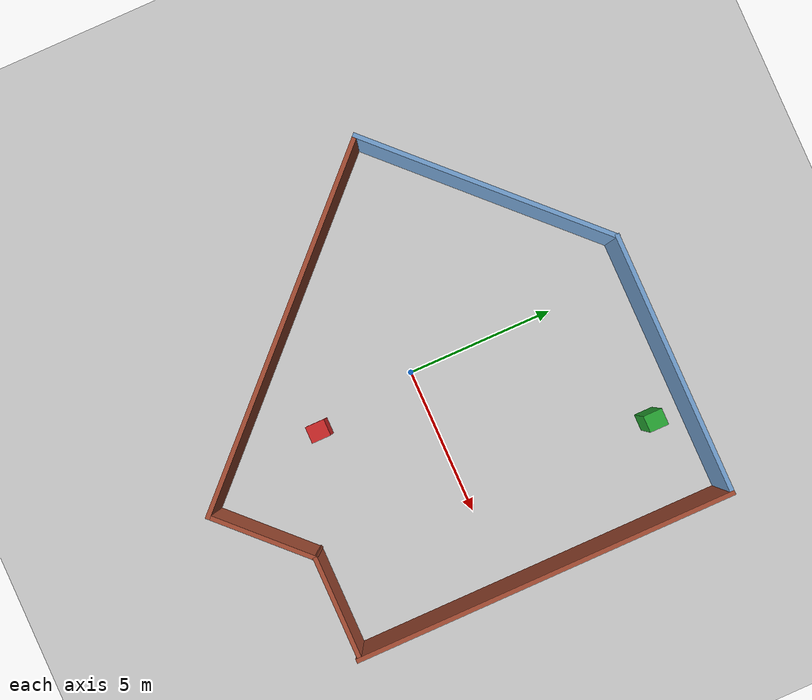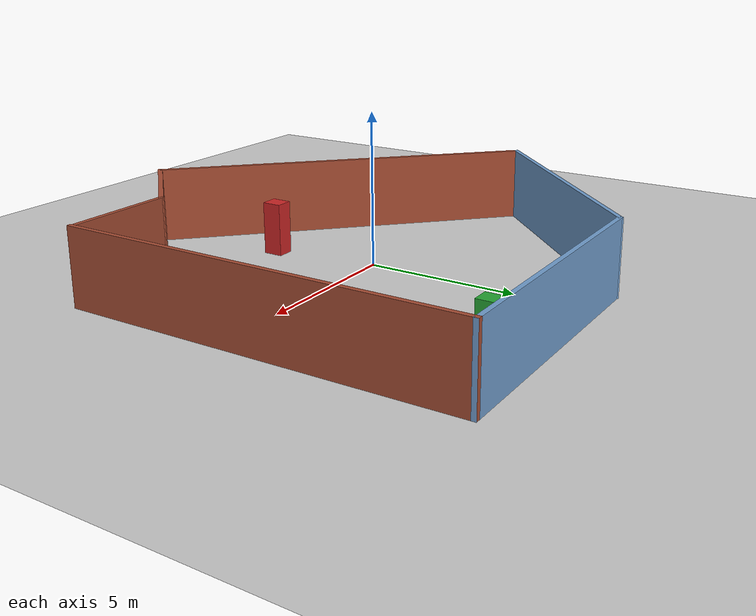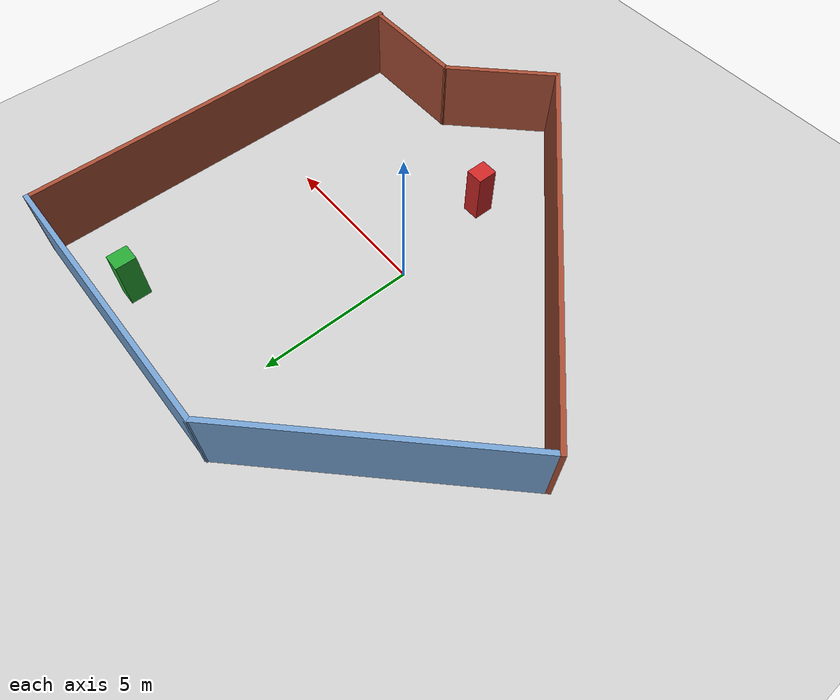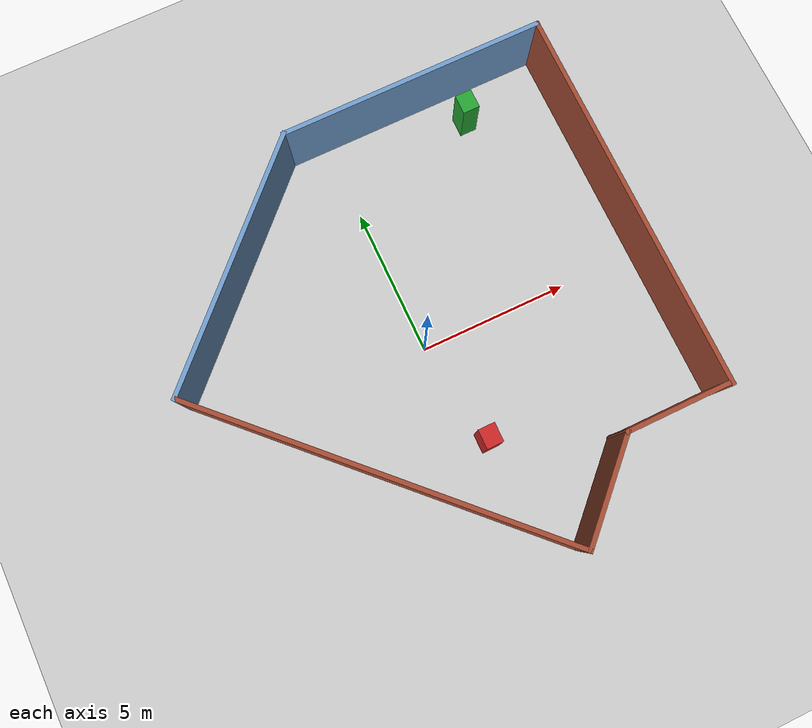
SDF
<sdf version="1.7">
 <world name="default">
  <light name="sun" type="directional">
   <pose>0 0 10 0 -0 0</pose>
   <diffuse>0.8 0.8 0.8 1</diffuse>
   <specular>0.2 0.2 0.2 1</specular>
   <attenuation>
    <range>1000</range>
    <constant>0.9</constant>
    <linear>0.01</linear>
    <quadratic>0.001</quadratic>
   </attenuation>
   <direction>-0.5 0.1 -0.9</direction>
   <spot><inner_angle>0</inner_angle><outer_angle>0</outer_angle><falloff>0</falloff></spot>
  </light>
  <model name="ground_plane">
   <static>1</static>
   <link name="link">
    <collision name="collision">
     <geometry><plane><normal>0 0 1</normal><size>100 100</size></plane></geometry>
     <surface><friction><ode><mu>100</mu><mu2>50</mu2></ode></friction></surface>
    </collision>
    <visual name="visual">
     <cast_shadows>0</cast_shadows>
     <geometry><plane><normal>0 0 1</normal><size>100 100</size></plane></geometry>
     <material>
      <script><uri>file://media/materials/scripts/gazebo.material</uri><name>Gazebo/Grey</name></script>
     </material>
    </visual>
   </link>
  </model>
  <gravity>0 0 -9.8</gravity>
  <magnetic_field>6e-06 2.3e-05 -4.2e-05</magnetic_field>
  <atmosphere type="adiabatic"/>
  <physics type="ode">
   <max_step_size>0.001</max_step_size>
   <real_time_factor>1</real_time_factor>
   <real_time_update_rate>1000</real_time_update_rate>
  </physics>
  <scene><ambient>0.4 0.4 0.4 1</ambient><background>0.7 0.7 0.7 1</background><shadows>1</shadows></scene>
  <spherical_coordinates>
   <surface_model>EARTH_WGS84</surface_model>
   <latitude_deg>0</latitude_deg>
   <longitude_deg>0</longitude_deg>
   <elevation>0</elevation>
   <heading_deg>0</heading_deg>
  </spherical_coordinates>
  <model name="atrium.world">
   <pose>0.001025 0.007166 0 0 -0 0</pose>
   <link name="Wall_14">
    <collision name="Wall_14_Collision">
     <geometry><box><size>13 0.15 2.5</size></box></geometry>
     <pose>0 0 1.25 0 -0 0</pose>
    </collision>
    <visual name="Wall_14_Visual">
     <pose>0 0 1.25 0 -0 0</pose>
     <geometry><box><size>13 0.15 2.5</size></box></geometry>
     <material>
      <script><uri>file://media/materials/scripts/gazebo.material</uri><name>Gazebo/Bricks</name></script>
      <ambient>1 1 1 1</ambient>
     </material>
     <meta><layer>0</layer></meta>
    </visual>
    <pose>7.56948 1.24711 0 0 -0 1.5708</pose>
   </link>
   <link name="Wall_15">
    <collision name="Wall_15_Collision">
     <geometry><box><size>9 0.15 2.5</size></box></geometry>
     <pose>0 0 1.25 0 -0 0</pose>
    </collision>
    <visual name="Wall_15_Visual">
     <pose>0 0 1.25 0 -0 0</pose>
     <geometry><box><size>9 0.15 2.5</size></box></geometry>
     <material>
      <script><uri>file://media/materials/scripts/gazebo.material</uri><name>Gazebo/Grey</name></script>
      <ambient>0.447059 0.623529 0.811765 1</ambient>
     </material>
     <meta><layer>0</layer></meta>
    </visual>
    <pose>3.14448 7.67211 0 0 -0 3.14159</pose>
   </link>
   <link name="Wall_16">
    <collision name="Wall_16_Collision">
     <geometry><box><size>9 0.15 2.5</size></box></geometry>
     <pose>0 0 1.25 0 -0 0</pose>
    </collision>
    <visual name="Wall_16_Visual">
     <pose>0 0 1.25 0 -0 0</pose>
     <geometry><box><size>9 0.15 2.5</size></box></geometry>
     <material>
      <script><uri>file://media/materials/scripts/gazebo.material</uri><name>Gazebo/Grey</name></script>
      <ambient>0.447059 0.623529 0.811765 1</ambient>
     </material>
     <meta><layer>0</layer></meta>
    </visual>
    <pose>-4.40947 4.54316 0 0 -0 -2.35619</pose>
   </link>
   <link name="Wall_17">
    <collision name="Wall_17_Collision">
     <geometry><box><size>13 0.15 2.5</size></box></geometry>
     <pose>0 0 1.25 0 -0 0</pose>
    </collision>
    <visual name="Wall_17_Visual">
     <pose>0 0 1.25 0 -0 0</pose>
     <geometry><box><size>13 0.15 2.5</size></box></geometry>
     <material>
      <script><uri>file://media/materials/scripts/gazebo.material</uri><name>Gazebo/Bricks</name></script>
      <ambient>1 1 1 1</ambient>
     </material>
     <meta><layer>0</layer></meta>
    </visual>
    <pose>-2.99525 -3.12895 0 0 -0 -0.785398</pose>
   </link>
   <link name="Wall_18">
    <collision name="Wall_18_Collision">
     <geometry><box><size>3.75 0.15 2.5</size></box></geometry>
     <pose>0 0 1.25 0 -0 0</pose>
    </collision>
    <visual name="Wall_18_Visual">
     <pose>0 0 1.25 0 -0 0</pose>
     <geometry><box><size>3.75 0.15 2.5</size></box></geometry>
     <material>
      <script><uri>file://media/materials/scripts/gazebo.material</uri><name>Gazebo/Bricks</name></script>
      <ambient>1 1 1 1</ambient>
     </material>
     <meta><layer>0</layer></meta>
    </visual>
    <pose>2.8207 -6.39932 0 0 -0 0.785398</pose>
   </link>
   <link name="Wall_19">
    <collision name="Wall_19_Collision">
     <geometry><box><size>3.5 0.15 2.5</size></box></geometry>
     <pose>0 0 1.25 0 -0 0</pose>
    </collision>
    <visual name="Wall_19_Visual">
     <pose>0 0 1.25 0 -0 0</pose>
     <geometry><box><size>3.5 0.15 2.5</size></box></geometry>
     <material>
      <script><uri>file://media/materials/scripts/gazebo.material</uri><name>Gazebo/Bricks</name></script>
      <ambient>1 1 1 1</ambient>
     </material>
     <meta><layer>0</layer></meta>
    </visual>
    <pose>5.76849 -5.12652 0 0 -0 0</pose>
   </link>
   <static>1</static>
  </model>
  <model name="obstacle">
   <link name="link">
    <inertial>
     <mass>0.89281</mass>
     <inertia>
      <ixx>0.479218</ixx>
      <ixy>0</ixy>
      <ixz>0</ixz>
      <iyy>0.471475</iyy>
      <iyz>0</iyz>
      <izz>0.0546919</izz>
     </inertia>
    </inertial>
    <visual name="visual">
     <geometry><box><size>0.561705 0.647754 2.45386</size></box></geometry>
     <material>
      <script><name>Gazebo/Red</name><uri>file://media/materials/scripts/gazebo.material</uri></script>
      <shader type="pixel"/>
     </material>
    </visual>
    <collision name="collision">
     <geometry><box><size>0.561705 0.647754 2.45386</size></box></geometry>
     <surface>
      <friction>
       <ode><mu>1</mu><mu2>1</mu2><fdir1>0 0 0</fdir1><slip1>0</slip1><slip2>0</slip2></ode>
       <torsional>
        <coefficient>1</coefficient>
        <patch_radius>0</patch_radius>
        <surface_radius>0</surface_radius>
        <use_patch_radius>1</use_patch_radius>
        <ode><slip>0</slip></ode>
       </torsional>
      </friction>
      <bounce><restitution_coefficient>0</restitution_coefficient><threshold>1e+06</threshold></bounce>
      <contact>
       <collide_without_contact>0</collide_without_contact>
       <collide_without_contact_bitmask>1</collide_without_contact_bitmask>
       <collide_bitmask>1</collide_bitmask>
       <ode>
        <soft_cfm>0</soft_cfm>
        <soft_erp>0.2</soft_erp>
        <kp>1e+13</kp>
        <kd>1</kd>
        <max_vel>0.01</max_vel>
        <min_depth>0</min_depth>
       </ode>
       <bullet>
        <split_impulse>1</split_impulse>
        <split_impulse_penetration_threshold>-0.01</split_impulse_penetration_threshold>
        <soft_cfm>0</soft_cfm>
        <soft_erp>0.2</soft_erp>
        <kp>1e+13</kp>
        <kd>1</kd>
       </bullet>
      </contact>
     </surface>
    </collision>
   </link>
   <static>1</static>
   <pose>0.509064 -3.48906 0.5 0 -0 0</pose>
  </model>
  <model name="obstacle_clone">
   <link name="link">
    <inertial>
     <mass>0.89281</mass>
     <inertia>
      <ixx>0.479218</ixx>
      <ixy>0</ixy>
      <ixz>0</ixz>
      <iyy>0.471475</iyy>
      <iyz>0</iyz>
      <izz>0.0546919</izz>
     </inertia>
    </inertial>
    <visual name="visual">
     <geometry><box><size>0.561705 0.647754 2.45386</size></box></geometry>
     <material>
      <script><name>Gazebo/Green</name><uri>file://media/materials/scripts/gazebo.material</uri></script>
      <shader type="pixel"/>
     </material>
    </visual>
    <collision name="collision">
     <geometry><box><size>0.561705 0.647754 2.45386</size></box></geometry>
     <surface>
      <friction>
       <ode><mu>1</mu><mu2>1</mu2><fdir1>0 0 0</fdir1><slip1>0</slip1><slip2>0</slip2></ode>
       <torsional>
        <coefficient>1</coefficient>
        <patch_radius>0</patch_radius>
        <surface_radius>0</surface_radius>
        <use_patch_radius>1</use_patch_radius>
        <ode><slip>0</slip></ode>
       </torsional>
      </friction>
      <bounce><restitution_coefficient>0</restitution_coefficient><threshold>1e+06</threshold></bounce>
      <contact>
       <collide_without_contact>0</collide_without_contact>
       <collide_without_contact_bitmask>1</collide_without_contact_bitmask>
       <collide_bitmask>1</collide_bitmask>
       <ode>
        <soft_cfm>0</soft_cfm>
        <soft_erp>0.2</soft_erp>
        <kp>1e+13</kp>
        <kd>1</kd>
        <max_vel>0.01</max_vel>
        <min_depth>0</min_depth>
       </ode>
       <bullet>
        <split_impulse>1</split_impulse>
        <split_impulse_penetration_threshold>-0.01</split_impulse_penetration_threshold>
        <soft_cfm>0</soft_cfm>
        <soft_erp>0.2</soft_erp>
        <kp>1e+13</kp>
        <kd>1</kd>
       </bullet>
      </contact>
     </surface>
    </collision>
   </link>
   <static>1</static>
   <pose>4.58469 6.52742 0.5 0 -0 0</pose>
  </model>
 </world>
</sdf>
